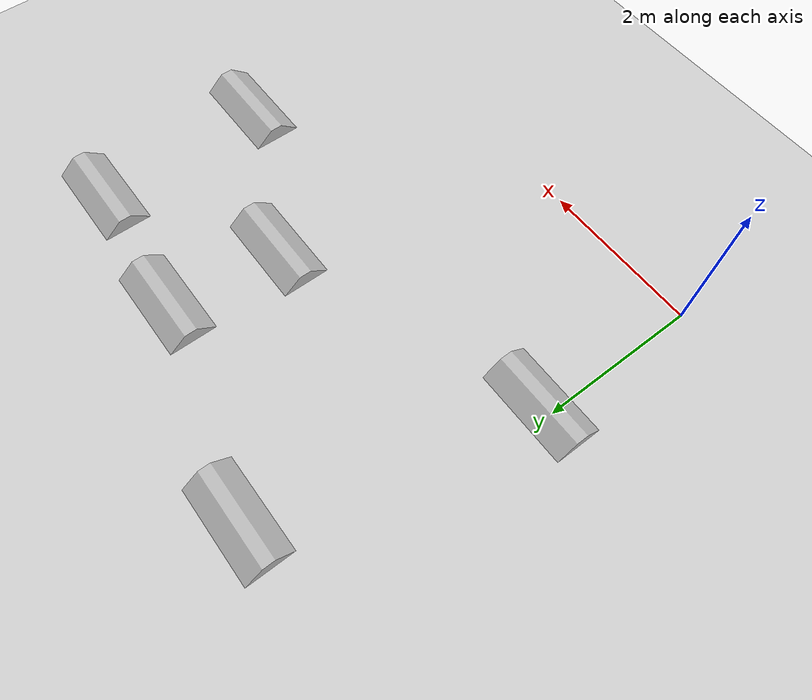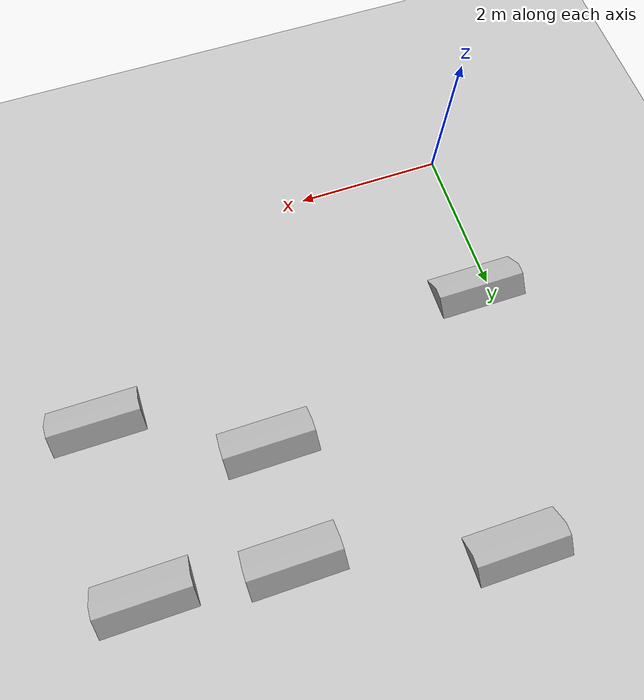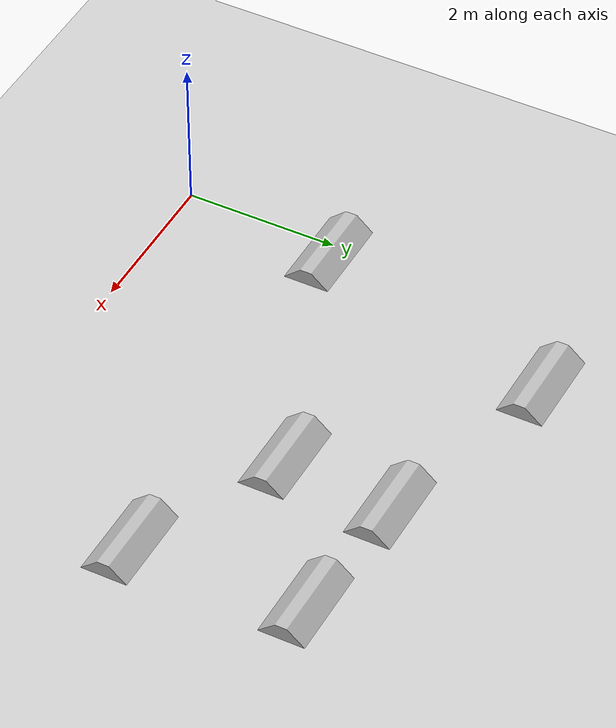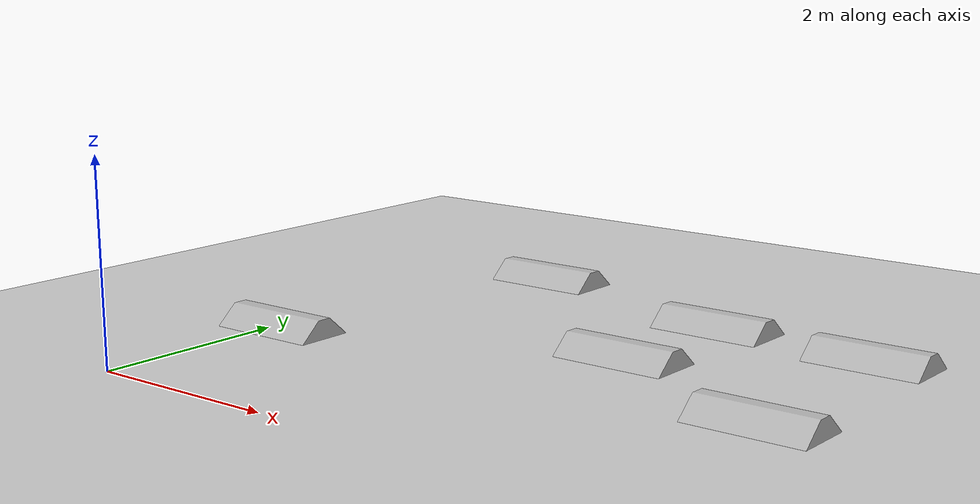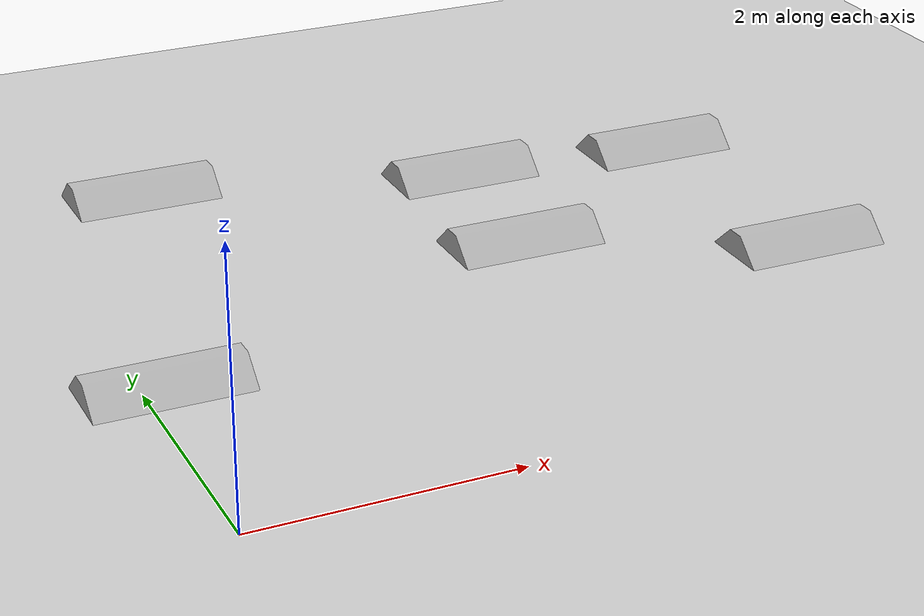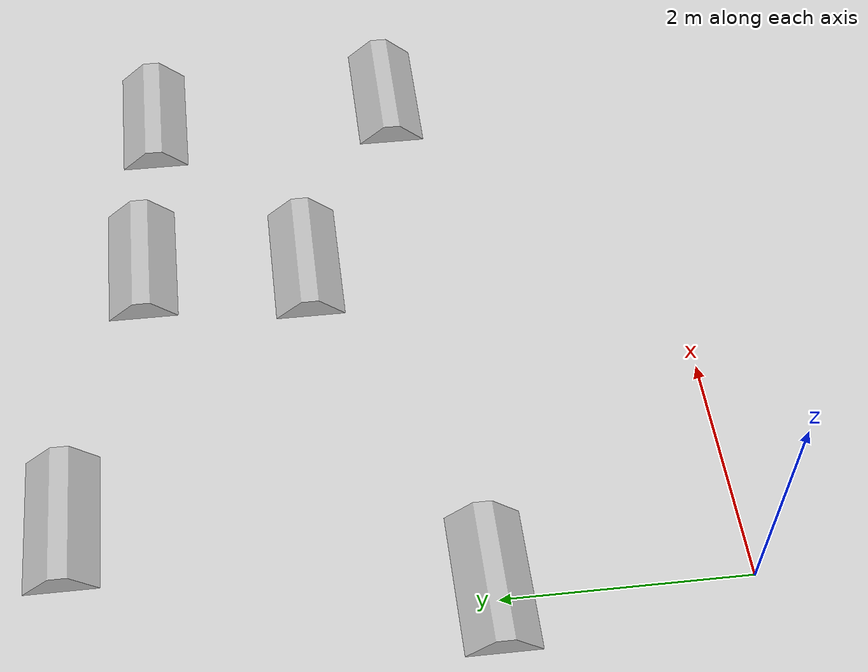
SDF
<?xml version="1.0" ?>
<sdf version="1.5">
  <world name="default">
    <!-- A global light source -->
    <include>
      <uri>model://sun</uri>
    </include>
    <!-- A ground plane -->
    <include>
      <uri>model://ground_plane</uri>
    </include>
    <!-- scene -->
    <scene>
      <ambient>0.4 0.4 0.4 1</ambient>
      <background>0.7 0.7 0.7 1</background>
      <shadows>1</shadows>
      <sky>
        <clouds>
          <speed>12</speed>
        </clouds>
      </sky>
    </scene>
    <!-- Obstacle -->

  <model name='Obstacle_01'>
    <static>1</static>
    <link name='Obstacle_01'>
      <pose frame=''>0 0 0 0 -0 0</pose>
      <enable_wind>0</enable_wind>
      <self_collide>0</self_collide>
      <kinematic>0</kinematic>
      <inertial>
        <pose frame=''>0 0 0 0 -0 0</pose>
        <mass>1</mass>
        <inertia>
          <ixx>0.166667</ixx>
          <ixy>0</ixy>
          <ixz>0</ixz>
          <iyy>0.166667</iyy>
          <iyz>0</iyz>
          <izz>0.166667</izz>
        </inertia>
      </inertial>
      <visual name='visual'>
        <pose frame=''>0 0 0 0 -0 0</pose>
        <geometry>
          <mesh>
            <uri>model://terrain/Obstacle_01_double_ramp.dae</uri>
          </mesh>
        </geometry>
      </visual>
      <collision name='collision'>
        <laser_retro>0</laser_retro>
        <max_contacts>100</max_contacts>
        <pose frame=''>0 0 0 0 -0 0</pose>
        <geometry>
          <mesh>
            <uri>model://terrain/Obstacle_01_double_ramp.dae</uri>
          </mesh>
        </geometry>
        <surface>
          <bounce>
            <restitution_coefficient>0</restitution_coefficient>
            <threshold>1e+06</threshold>
          </bounce>
          <friction>
            <ode>
              <mu>1.2</mu>
              <mu2>1.2</mu2>
            </ode>
            <torsional>
              <ode/>
            </torsional>
          </friction>
          <contact>
            <collide_without_contact>0</collide_without_contact>
            <collide_without_contact_bitmask>1</collide_without_contact_bitmask>
            <collide_bitmask>1</collide_bitmask>
            <ode>
              <soft_cfm>0.2</soft_cfm>
              <soft_erp>0.2</soft_erp>
              <kp>1e+08</kp>
              <kd>10</kd>
              <max_vel>100</max_vel>
              <min_depth>0.001</min_depth>
            </ode>
          </contact>
        </surface>
      </collision>
    </link>
    <pose frame=''>1.04248 5.33233 0 0 -0 0</pose>
  </model>
  <model name='Obstacle_03'>
    <static>1</static>
    <link name='Obstacle_03'>
      <pose frame=''>0 0 0 0 -0 0</pose>
      <enable_wind>0</enable_wind>
      <self_collide>0</self_collide>
      <kinematic>0</kinematic>
      <inertial>
        <pose frame=''>0 0 0 0 -0 0</pose>
        <mass>1</mass>
        <inertia>
          <ixx>0.166667</ixx>
          <ixy>0</ixy>
          <ixz>0</ixz>
          <iyy>0.166667</iyy>
          <iyz>0</iyz>
          <izz>0.166667</izz>
        </inertia>
      </inertial>
      <visual name='visual'>
        <pose frame=''>0 0 0 0 -0 0</pose>
        <geometry>
          <mesh>
            <uri>model://terrain/Obstacle_01_double_ramp.dae</uri>
          </mesh>
        </geometry>
      </visual>
      <collision name='collision'>
        <laser_retro>0</laser_retro>
        <max_contacts>100</max_contacts>
        <pose frame=''>0 0 0 0 -0 0</pose>
        <geometry>
          <mesh>
            <uri>model://terrain/Obstacle_01_double_ramp.dae</uri>
          </mesh>
        </geometry>
        <surface>
          <bounce>
            <restitution_coefficient>0</restitution_coefficient>
            <threshold>1e+06</threshold>
          </bounce>
          <friction>
            <ode>
              <mu>1.2</mu>
              <mu2>1.2</mu2>
            </ode>
            <torsional>
              <ode/>
            </torsional>
          </friction>
          <contact>
            <collide_without_contact>0</collide_without_contact>
            <collide_without_contact_bitmask>1</collide_without_contact_bitmask>
            <collide_bitmask>1</collide_bitmask>
            <ode>
              <soft_cfm>0.2</soft_cfm>
              <soft_erp>0.2</soft_erp>
              <kp>1e+08</kp>
              <kd>10</kd>
              <max_vel>100</max_vel>
              <min_depth>0.001</min_depth>
            </ode>
          </contact>
        </surface>
      </collision>
    </link>
    <pose frame=''>3.63696 4.65244 0 0 -0 0</pose>
  </model>
  <model name='Obstacle_05'>
    <static>1</static>
    <link name='Obstacle_05'>
      <pose frame=''>0 0 0 0 -0 0</pose>
      <enable_wind>0</enable_wind>
      <self_collide>0</self_collide>
      <kinematic>0</kinematic>
      <inertial>
        <pose frame=''>0 0 0 0 -0 0</pose>
        <mass>1</mass>
        <inertia>
          <ixx>0.166667</ixx>
          <ixy>0</ixy>
          <ixz>0</ixz>
          <iyy>0.166667</iyy>
          <iyz>0</iyz>
          <izz>0.166667</izz>
        </inertia>
      </inertial>
      <visual name='visual'>
        <pose frame=''>0 0 0 0 -0 0</pose>
        <geometry>
          <mesh>
            <uri>model://terrain/Obstacle_01_double_ramp.dae</uri>
          </mesh>
        </geometry>
      </visual>
      <collision name='collision'>
        <laser_retro>0</laser_retro>
        <max_contacts>100</max_contacts>
        <pose frame=''>0 0 0 0 -0 0</pose>
        <geometry>
          <mesh>
            <uri>model://terrain/Obstacle_01_double_ramp.dae</uri>
          </mesh>
        </geometry>
        <surface>
          <bounce>
            <restitution_coefficient>0</restitution_coefficient>
            <threshold>1e+06</threshold>
          </bounce>
          <friction>
            <ode>
              <mu>1.2</mu>
              <mu2>1.2</mu2>
            </ode>
            <torsional>
              <ode/>
            </torsional>
          </friction>
          <contact>
            <collide_without_contact>0</collide_without_contact>
            <collide_without_contact_bitmask>1</collide_without_contact_bitmask>
            <collide_bitmask>1</collide_bitmask>
            <ode>
              <soft_cfm>0.2</soft_cfm>
              <soft_erp>0.2</soft_erp>
              <kp>1e+08</kp>
              <kd>10</kd>
              <max_vel>100</max_vel>
              <min_depth>0.001</min_depth>
            </ode>
          </contact>
        </surface>
      </collision>
    </link>
    <pose frame=''>5.41571 4.5027 0 0 -0 0</pose>
  </model>
  <model name='Obstacle_07'>
    <static>1</static>
    <link name='Obstacle_07'>
      <pose frame=''>0 0 0 0 -0 0</pose>
      <enable_wind>0</enable_wind>
      <self_collide>0</self_collide>
      <kinematic>0</kinematic>
      <inertial>
        <pose frame=''>0 0 0 0 -0 0</pose>
        <mass>1</mass>
        <inertia>
          <ixx>0.166667</ixx>
          <ixy>0</ixy>
          <ixz>0</ixz>
          <iyy>0.166667</iyy>
          <iyz>0</iyz>
          <izz>0.166667</izz>
        </inertia>
      </inertial>
      <visual name='visual'>
        <pose frame=''>0 0 0 0 -0 0</pose>
        <geometry>
          <mesh>
            <uri>model://terrain/Obstacle_01_double_ramp.dae</uri>
          </mesh>
        </geometry>
      </visual>
      <collision name='collision'>
        <laser_retro>0</laser_retro>
        <max_contacts>100</max_contacts>
        <pose frame=''>0 0 0 0 -0 0</pose>
        <geometry>
          <mesh>
            <uri>model://terrain/Obstacle_01_double_ramp.dae</uri>
          </mesh>
        </geometry>
        <surface>
          <bounce>
            <restitution_coefficient>0</restitution_coefficient>
            <threshold>1e+06</threshold>
          </bounce>
          <friction>
            <ode>
              <mu>1.2</mu>
              <mu2>1.2</mu2>
            </ode>
            <torsional>
              <ode/>
            </torsional>
          </friction>
          <contact>
            <collide_without_contact>0</collide_without_contact>
            <collide_without_contact_bitmask>1</collide_without_contact_bitmask>
            <collide_bitmask>1</collide_bitmask>
            <ode>
              <soft_cfm>0.2</soft_cfm>
              <soft_erp>0.2</soft_erp>
              <kp>1e+08</kp>
              <kd>10</kd>
              <max_vel>100</max_vel>
              <min_depth>0.001</min_depth>
            </ode>
          </contact>
        </surface>
      </collision>
    </link>
    <pose frame=''>0.166479 2.02646 0 0 -0 0</pose>
  </model>
  <model name='Obstacle_09'>
    <static>1</static>
    <link name='Obstacle_09'>
      <pose frame=''>0 0 0 0 -0 0</pose>
      <enable_wind>0</enable_wind>
      <self_collide>0</self_collide>
      <kinematic>0</kinematic>
      <inertial>
        <pose frame=''>0 0 0 0 -0 0</pose>
        <mass>1</mass>
        <inertia>
          <ixx>0.166667</ixx>
          <ixy>0</ixy>
          <ixz>0</ixz>
          <iyy>0.166667</iyy>
          <iyz>0</iyz>
          <izz>0.166667</izz>
        </inertia>
      </inertial>
      <visual name='visual'>
        <pose frame=''>0 0 0 0 -0 0</pose>
        <geometry>
          <mesh>
            <uri>model://terrain/Obstacle_01_double_ramp.dae</uri>
          </mesh>
        </geometry>
      </visual>
      <collision name='collision'>
        <laser_retro>0</laser_retro>
        <max_contacts>100</max_contacts>
        <pose frame=''>0 0 0 0 -0 0</pose>
        <geometry>
          <mesh>
            <uri>model://terrain/Obstacle_01_double_ramp.dae</uri>
          </mesh>
        </geometry>
        <surface>
          <bounce>
            <restitution_coefficient>0</restitution_coefficient>
            <threshold>1e+06</threshold>
          </bounce>
          <friction>
            <ode>
              <mu>1.2</mu>
              <mu2>1.2</mu2>
            </ode>
            <torsional>
              <ode/>
            </torsional>
          </friction>
          <contact>
            <collide_without_contact>0</collide_without_contact>
            <collide_without_contact_bitmask>1</collide_without_contact_bitmask>
            <collide_bitmask>1</collide_bitmask>
            <ode>
              <soft_cfm>0.2</soft_cfm>
              <soft_erp>0.2</soft_erp>
              <kp>1e+08</kp>
              <kd>10</kd>
              <max_vel>100</max_vel>
              <min_depth>0.001</min_depth>
            </ode>
          </contact>
        </surface>
      </collision>
    </link>
    <pose frame=''>3.50249 3.20439 0 0 -0 0</pose>
  </model>
  <model name='Obstacle_11'>
    <static>1</static>
    <link name='Obstacle_11'>
      <pose frame=''>0 0 0 0 -0 0</pose>
      <enable_wind>0</enable_wind>
      <self_collide>0</self_collide>
      <kinematic>0</kinematic>
      <inertial>
        <pose frame=''>0 0 0 0 -0 0</pose>
        <mass>1</mass>
        <inertia>
          <ixx>0.166667</ixx>
          <ixy>0</ixy>
          <ixz>0</ixz>
          <iyy>0.166667</iyy>
          <iyz>0</iyz>
          <izz>0.166667</izz>
        </inertia>
      </inertial>
      <visual name='visual'>
        <pose frame=''>0 0 0 0 -0 0</pose>
        <geometry>
          <mesh>
            <uri>model://terrain/Obstacle_01_double_ramp.dae</uri>
          </mesh>
        </geometry>
      </visual>
      <collision name='collision'>
        <laser_retro>0</laser_retro>
        <max_contacts>100</max_contacts>
        <pose frame=''>0 0 0 0 -0 0</pose>
        <geometry>
          <mesh>
            <uri>model://terrain/Obstacle_01_double_ramp.dae</uri>
          </mesh>
        </geometry>
        <surface>
          <bounce>
            <restitution_coefficient>0</restitution_coefficient>
            <threshold>1e+06</threshold>
          </bounce>
          <friction>
            <ode>
              <mu>1.2</mu>
              <mu2>1.2</mu2>
            </ode>
            <torsional>
              <ode/>
            </torsional>
          </friction>
          <contact>
            <collide_without_contact>0</collide_without_contact>
            <collide_without_contact_bitmask>1</collide_without_contact_bitmask>
            <collide_bitmask>1</collide_bitmask>
            <ode>
              <soft_cfm>0.2</soft_cfm>
              <soft_erp>0.2</soft_erp>
              <kp>1e+08</kp>
              <kd>10</kd>
              <max_vel>100</max_vel>
              <min_depth>0.001</min_depth>
            </ode>
          </contact>
        </surface>
      </collision>
    </link>
    <pose frame=''>5.50724 2.2695 0 0 -0 0</pose>
  </model>

  </world>
</sdf>
